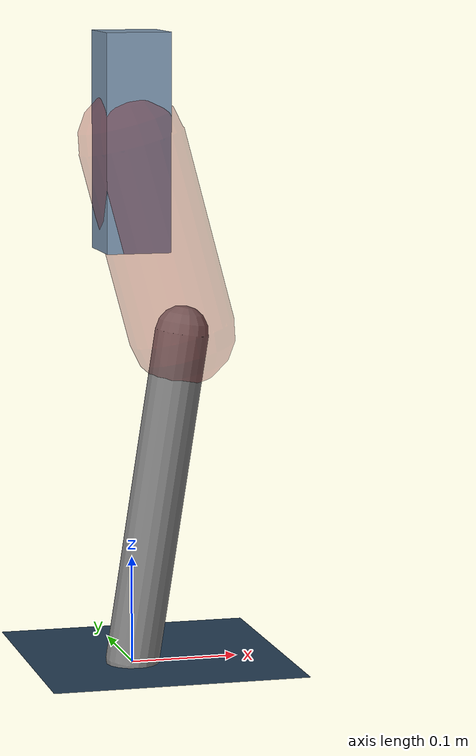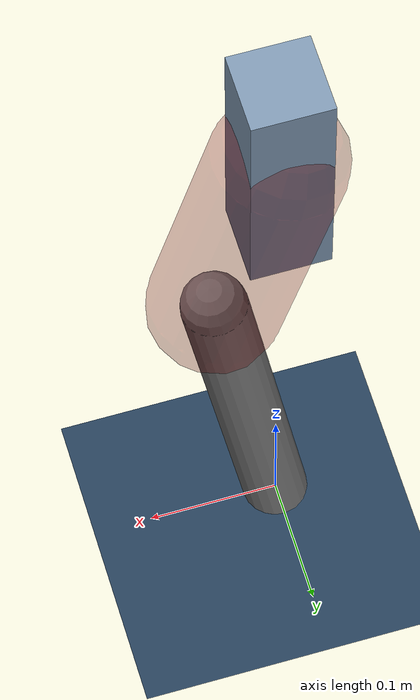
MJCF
<mujoco model="Hopper2D">
	<compiler inertiafromgeom="true" angle="radian" />
	<option timestep="0.001" integrator="implicit" cone="elliptic" solver="Newton" tolerance="1e-10" />

	<default>
		<geom contype="1" conaffinity="1" condim="3" friction="2 0.005 0.0001" solref="0.005 1" />
		<joint limited="true" damping="0.1" />
	</default>

	<asset>
		<texture name="skybox" type="skybox" builtin="gradient" rgb1=".4 .6 .8" rgb2="0 0 0" width="800" height="800" />
		<texture name="grid" type="2d" builtin="checker" rgb1=".1 .2 .3" rgb2=".2 .3 .4" width="300" height="300" mark="edge" markrgb=".2 .3 .4" />
		<material name="ground" texture="grid" texrepeat="1 1" texuniform="true" reflectance="0.1" />
		<material name="leg" rgba="0.5 0.6 0.7 1" />
	</asset>

	<worldbody>

		<geom name="floor" type="plane" size="5 5 0.25" material="ground" />

		<light directional="false" diffuse="0.8 0.8 0.8" specular="0.3 0.3 0.3" pos="0 0 2" dir="0 0 -1" />
		<light mode="targetbodycom" target="base" directional="false" diffuse="0.8 0.8 0.8" specular="0.3 0.3 0.3" pos="0 0 2" dir="0 0 -1" />

		<camera name="fixed" pos="0 -2 1" xyaxes="1 0 0 0 0 1" />
		<camera name="tracking" mode="trackcom" pos="0 -3 1" />

		<body name="root" pos="0 0 0.4870559749547086">
			<joint name="slide_x" type="slide" axis="1 0 0" range="-100 100" />
			<joint name="slide_z" type="slide" axis="0 0 1" range="0 10" />

			<body name="base" pos="0 0 0">
				<geom name="torso" type="box" size="0.03 0.03 0.1" mass="2.193" material="leg" />

				<body name="link1" pos="0 0 0" euler="0 1.3077236205659653 0">
					<joint type="hinge" axis="0 -1 0" pos="0 0 0" name="hinge1" limited="true" range="-3.14 3.14" stiffness="0" damping="0.1" />
					<geom name="thigh" type="capsule" fromto="0 0 0 0.18389855181511933 0 0" size="0.05" rgba="0.5 0 0 0.3" mass="0.6900463795377983" />

					<body name="link2" pos="0.18389855181511933 0 0" euler="0 0.41638360293480225 0">
						<joint type="hinge" axis="0 -1 0" pos="0 0 0" name="hinge2" limited="true" range="-3.14 3.14" stiffness="0" damping="0.1" />
						<geom name="shank" type="capsule" fromto="0 0 0 0.3131574231395893 0 0" size="0.025" mass="0.4941259385116714" />

					</body>
				</body>
			</body>
		</body>
	</worldbody>

	<actuator>
		<motor name="torque1" joint="hinge1" ctrlrange="-65.33166500662401 65.33166500662401" ctrllimited="true" gear="1" />
		<motor name="torque2" joint="hinge2" ctrlrange="-28.99375590751665 28.99375590751665" ctrllimited="true" gear="1" />
	</actuator>
</mujoco>
